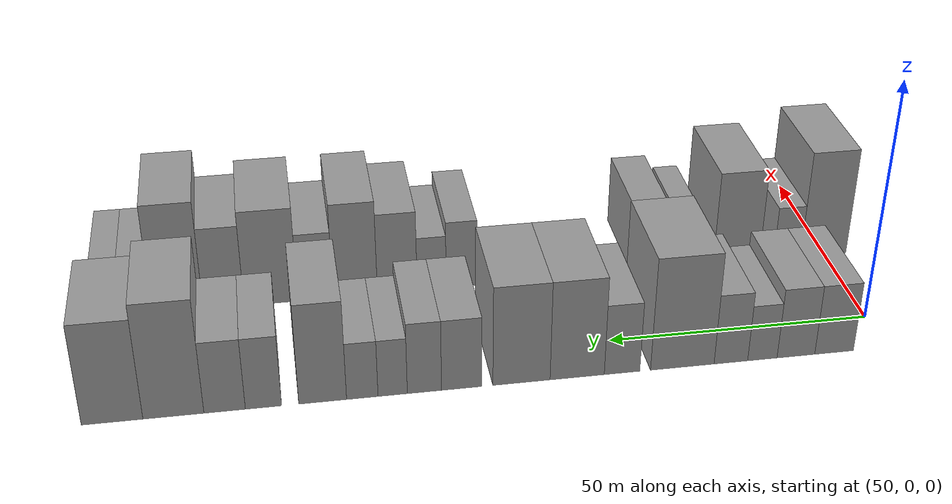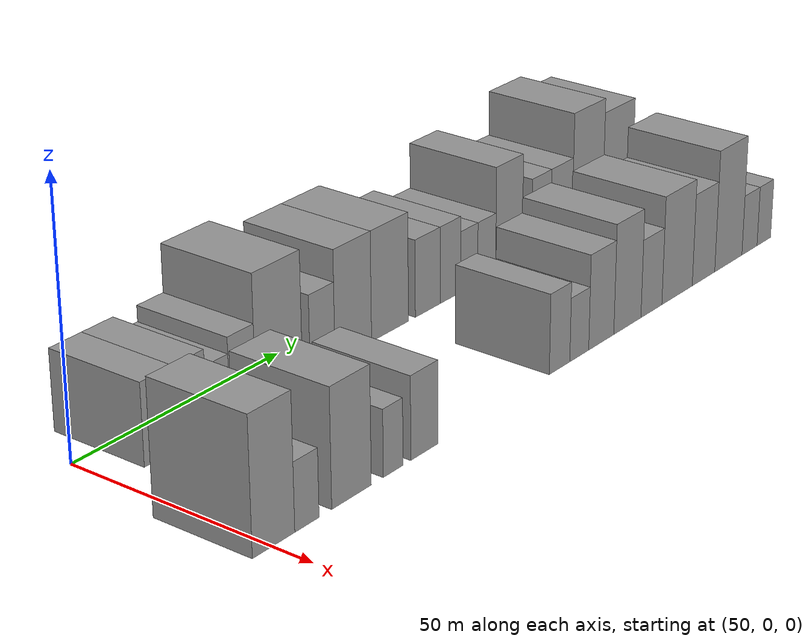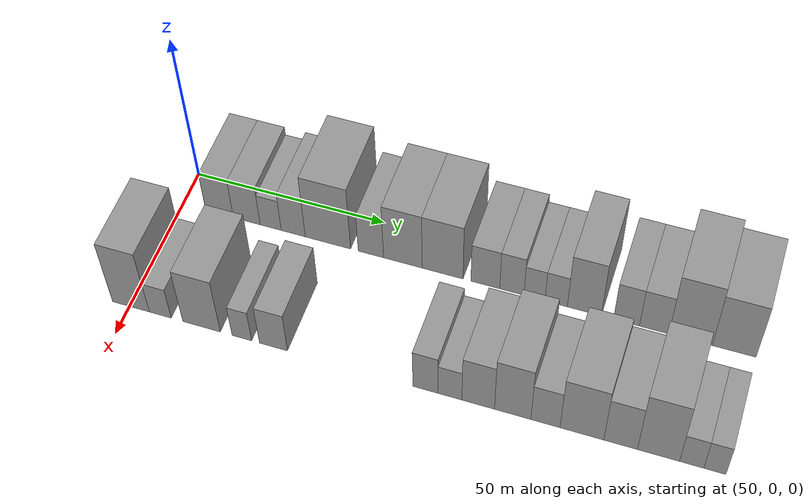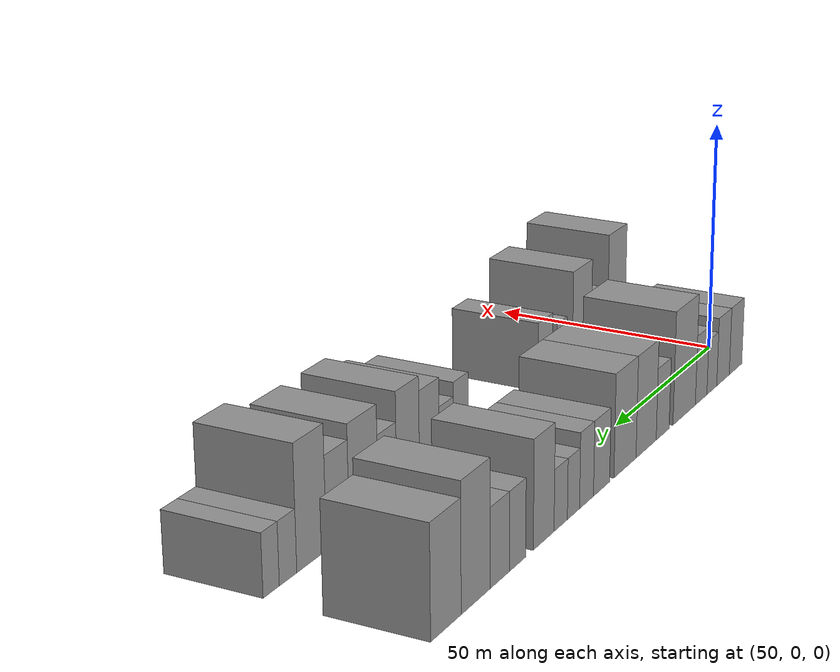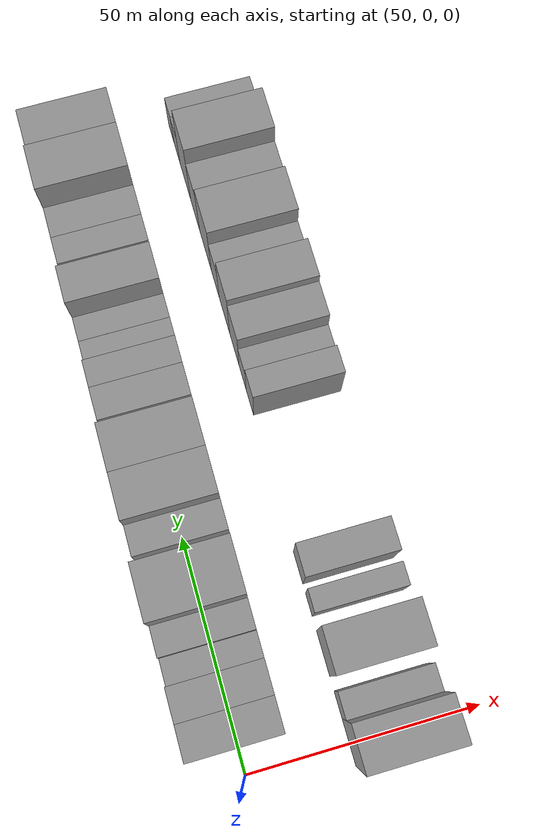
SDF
<sdf version="1.6">
 <world name="default">
  <model name="building_31">
   <static>1</static>
   <pose>50.0000 9.9251 0 0.000000 0.000000 0.000000</pose>
   <link name="link">
    <pose>0 0 7.50 0 0 0</pose>
    <collision name="collision"><geometry><box><size>20.0000 7.4453 15.0000</size></box></geometry></collision>
    <visual name="visual">
     <cast_shadows>0</cast_shadows>
     <geometry><box><size>20.0000 7.4453 15.0000</size></box></geometry>
     <material>
      <script>
       <uri>model://grey_wall/materials/scripts</uri>
       <uri>model://grey_wall/materials/textures</uri>
       <name>vrc/grey_wall</name>
      </script>
     </material>
    </visual>
   </link>
  </model>
  <model name="building_32">
   <static>1</static>
   <pose>50.0000 17.2544 0 0.000000 0.000000 0.000000</pose>
   <link name="link">
    <pose>0 0 7.50 0 0 0</pose>
    <collision name="collision"><geometry><box><size>20.0000 7.2133 15.0000</size></box></geometry></collision>
    <visual name="visual">
     <cast_shadows>0</cast_shadows>
     <geometry><box><size>20.0000 7.2133 15.0000</size></box></geometry>
     <material>
      <script>
       <uri>model://grey_wall/materials/scripts</uri>
       <uri>model://grey_wall/materials/textures</uri>
       <name>vrc/grey_wall</name>
      </script>
     </material>
    </visual>
   </link>
  </model>
  <model name="building_33">
   <static>1</static>
   <pose>50.0000 23.6577 0 0.000000 0.000000 0.000000</pose>
   <link name="link">
    <pose>0 0 6.00 0 0 0</pose>
    <collision name="collision"><geometry><box><size>20.0000 5.5933 12.0000</size></box></geometry></collision>
    <visual name="visual">
     <cast_shadows>0</cast_shadows>
     <geometry><box><size>20.0000 5.5933 12.0000</size></box></geometry>
     <material>
      <script>
       <uri>model://grey_wall/materials/scripts</uri>
       <uri>model://grey_wall/materials/textures</uri>
       <name>vrc/grey_wall</name>
      </script>
     </material>
    </visual>
   </link>
  </model>
  <model name="building_34">
   <static>1</static>
   <pose>50.0000 29.6314 0 0.000000 0.000000 0.000000</pose>
   <link name="link">
    <pose>0 0 7.50 0 0 0</pose>
    <collision name="collision"><geometry><box><size>20.0000 6.3542 15.0000</size></box></geometry></collision>
    <visual name="visual">
     <cast_shadows>0</cast_shadows>
     <geometry><box><size>20.0000 6.3542 15.0000</size></box></geometry>
     <material>
      <script>
       <uri>model://grey_wall/materials/scripts</uri>
       <uri>model://grey_wall/materials/textures</uri>
       <name>vrc/grey_wall</name>
      </script>
     </material>
    </visual>
   </link>
  </model>
  <model name="building_35">
   <static>1</static>
   <pose>50.0000 38.7685 0 0.000000 0.000000 0.000000</pose>
   <link name="link">
    <pose>0 0 12.00 0 0 0</pose>
    <collision name="collision"><geometry><box><size>20.0000 11.9199 24.0000</size></box></geometry></collision>
    <visual name="visual">
     <cast_shadows>0</cast_shadows>
     <geometry><box><size>20.0000 11.9199 24.0000</size></box></geometry>
     <material>
      <script>
       <uri>model://grey_wall/materials/scripts</uri>
       <uri>model://grey_wall/materials/textures</uri>
       <name>vrc/grey_wall</name>
      </script>
     </material>
    </visual>
   </link>
  </model>
  <model name="building_36">
   <static>1</static>
   <pose>50.0000 50.0212 0 0.000000 0.000000 0.000000</pose>
   <link name="link">
    <pose>0 0 7.50 0 0 0</pose>
    <collision name="collision"><geometry><box><size>20.0000 6.5854 15.0000</size></box></geometry></collision>
    <visual name="visual">
     <cast_shadows>0</cast_shadows>
     <geometry><box><size>20.0000 6.5854 15.0000</size></box></geometry>
     <material>
      <script>
       <uri>model://grey_wall/materials/scripts</uri>
       <uri>model://grey_wall/materials/textures</uri>
       <name>vrc/grey_wall</name>
      </script>
     </material>
    </visual>
   </link>
  </model>
  <model name="building_37">
   <static>1</static>
   <pose>50.0000 58.3000 0 0.000000 0.000000 0.000000</pose>
   <link name="link">
    <pose>0 0 10.50 0 0 0</pose>
    <collision name="collision"><geometry><box><size>20.0000 9.9722 21.0000</size></box></geometry></collision>
    <visual name="visual">
     <cast_shadows>0</cast_shadows>
     <geometry><box><size>20.0000 9.9722 21.0000</size></box></geometry>
     <material>
      <script>
       <uri>model://grey_wall/materials/scripts</uri>
       <uri>model://grey_wall/materials/textures</uri>
       <name>vrc/grey_wall</name>
      </script>
     </material>
    </visual>
   </link>
  </model>
  <model name="building_38">
   <static>1</static>
   <pose>50.0000 68.4971 0 0.000000 0.000000 0.000000</pose>
   <link name="link">
    <pose>0 0 10.50 0 0 0</pose>
    <collision name="collision"><geometry><box><size>20.0000 10.4220 21.0000</size></box></geometry></collision>
    <visual name="visual">
     <cast_shadows>0</cast_shadows>
     <geometry><box><size>20.0000 10.4220 21.0000</size></box></geometry>
     <material>
      <script>
       <uri>model://grey_wall/materials/scripts</uri>
       <uri>model://grey_wall/materials/textures</uri>
       <name>vrc/grey_wall</name>
      </script>
     </material>
    </visual>
   </link>
  </model>
  <model name="building_39">
   <static>1</static>
   <pose>50.0000 79.3387 0 0.000000 0.000000 0.000000</pose>
   <link name="link">
    <pose>0 0 7.50 0 0 0</pose>
    <collision name="collision"><geometry><box><size>20.0000 7.2612 15.0000</size></box></geometry></collision>
    <visual name="visual">
     <cast_shadows>0</cast_shadows>
     <geometry><box><size>20.0000 7.2612 15.0000</size></box></geometry>
     <material>
      <script>
       <uri>model://grey_wall/materials/scripts</uri>
       <uri>model://grey_wall/materials/textures</uri>
       <name>vrc/grey_wall</name>
      </script>
     </material>
    </visual>
   </link>
  </model>
  <model name="building_40">
   <static>1</static>
   <pose>50.0000 86.0301 0 0.000000 0.000000 0.000000</pose>
   <link name="link">
    <pose>0 0 7.50 0 0 0</pose>
    <collision name="collision"><geometry><box><size>20.0000 6.1216 15.0000</size></box></geometry></collision>
    <visual name="visual">
     <cast_shadows>0</cast_shadows>
     <geometry><box><size>20.0000 6.1216 15.0000</size></box></geometry>
     <material>
      <script>
       <uri>model://grey_wall/materials/scripts</uri>
       <uri>model://grey_wall/materials/textures</uri>
       <name>vrc/grey_wall</name>
      </script>
     </material>
    </visual>
   </link>
  </model>
  <model name="building_41">
   <static>1</static>
   <pose>50.0000 91.6999 0 0.000000 0.000000 0.000000</pose>
   <link name="link">
    <pose>0 0 6.00 0 0 0</pose>
    <collision name="collision"><geometry><box><size>20.0000 5.2180 12.0000</size></box></geometry></collision>
    <visual name="visual">
     <cast_shadows>0</cast_shadows>
     <geometry><box><size>20.0000 5.2180 12.0000</size></box></geometry>
     <material>
      <script>
       <uri>model://grey_wall/materials/scripts</uri>
       <uri>model://grey_wall/materials/textures</uri>
       <name>vrc/grey_wall</name>
      </script>
     </material>
    </visual>
   </link>
  </model>
  <model name="building_42">
   <static>1</static>
   <pose>50.0000 97.0927 0 0.000000 0.000000 0.000000</pose>
   <link name="link">
    <pose>0 0 6.00 0 0 0</pose>
    <collision name="collision"><geometry><box><size>20.0000 5.5674 12.0000</size></box></geometry></collision>
    <visual name="visual">
     <cast_shadows>0</cast_shadows>
     <geometry><box><size>20.0000 5.5674 12.0000</size></box></geometry>
     <material>
      <script>
       <uri>model://grey_wall/materials/scripts</uri>
       <uri>model://grey_wall/materials/textures</uri>
       <name>vrc/grey_wall</name>
      </script>
     </material>
    </visual>
   </link>
  </model>
  <model name="building_43">
   <static>1</static>
   <pose>50.0000 104.0828 0 0.000000 0.000000 0.000000</pose>
   <link name="link">
    <pose>0 0 10.50 0 0 0</pose>
    <collision name="collision"><geometry><box><size>20.0000 8.4127 21.0000</size></box></geometry></collision>
    <visual name="visual">
     <cast_shadows>0</cast_shadows>
     <geometry><box><size>20.0000 8.4127 21.0000</size></box></geometry>
     <material>
      <script>
       <uri>model://grey_wall/materials/scripts</uri>
       <uri>model://grey_wall/materials/textures</uri>
       <name>vrc/grey_wall</name>
      </script>
     </material>
    </visual>
   </link>
  </model>
  <model name="building_44">
   <static>1</static>
   <pose>50.0000 114.4415 0 0.000000 0.000000 0.000000</pose>
   <link name="link">
    <pose>0 0 7.50 0 0 0</pose>
    <collision name="collision"><geometry><box><size>20.0000 6.3048 15.0000</size></box></geometry></collision>
    <visual name="visual">
     <cast_shadows>0</cast_shadows>
     <geometry><box><size>20.0000 6.3048 15.0000</size></box></geometry>
     <material>
      <script>
       <uri>model://grey_wall/materials/scripts</uri>
       <uri>model://grey_wall/materials/textures</uri>
       <name>vrc/grey_wall</name>
      </script>
     </material>
    </visual>
   </link>
  </model>
  <model name="building_45">
   <static>1</static>
   <pose>50.0000 121.1762 0 0.000000 0.000000 0.000000</pose>
   <link name="link">
    <pose>0 0 7.50 0 0 0</pose>
    <collision name="collision"><geometry><box><size>20.0000 7.1645 15.0000</size></box></geometry></collision>
    <visual name="visual">
     <cast_shadows>0</cast_shadows>
     <geometry><box><size>20.0000 7.1645 15.0000</size></box></geometry>
     <material>
      <script>
       <uri>model://grey_wall/materials/scripts</uri>
       <uri>model://grey_wall/materials/textures</uri>
       <name>vrc/grey_wall</name>
      </script>
     </material>
    </visual>
   </link>
  </model>
  <model name="building_46">
   <static>1</static>
   <pose>50.0000 129.9872 0 0.000000 0.000000 0.000000</pose>
   <link name="link">
    <pose>0 0 12.00 0 0 0</pose>
    <collision name="collision"><geometry><box><size>20.0000 10.4575 24.0000</size></box></geometry></collision>
    <visual name="visual">
     <cast_shadows>0</cast_shadows>
     <geometry><box><size>20.0000 10.4575 24.0000</size></box></geometry>
     <material>
      <script>
       <uri>model://grey_wall/materials/scripts</uri>
       <uri>model://grey_wall/materials/textures</uri>
       <name>vrc/grey_wall</name>
      </script>
     </material>
    </visual>
   </link>
  </model>
  <model name="building_47">
   <static>1</static>
   <pose>50.0000 140.4449 0 0.000000 0.000000 0.000000</pose>
   <link name="link">
    <pose>0 0 10.50 0 0 0</pose>
    <collision name="collision"><geometry><box><size>20.0000 10.4578 21.0000</size></box></geometry></collision>
    <visual name="visual">
     <cast_shadows>0</cast_shadows>
     <geometry><box><size>20.0000 10.4578 21.0000</size></box></geometry>
     <material>
      <script>
       <uri>model://grey_wall/materials/scripts</uri>
       <uri>model://grey_wall/materials/textures</uri>
       <name>vrc/grey_wall</name>
      </script>
     </material>
    </visual>
   </link>
  </model>
  <model name="building_97">
   <static>1</static>
   <pose>82.0000 0.3367 0 0.000000 0.000000 0.000000</pose>
   <link name="link">
    <pose>0 0 12.00 0 0 0</pose>
    <collision name="collision"><geometry><box><size>20.0000 9.6275 24.0000</size></box></geometry></collision>
    <visual name="visual">
     <cast_shadows>0</cast_shadows>
     <geometry><box><size>20.0000 9.6275 24.0000</size></box></geometry>
     <material>
      <script>
       <uri>model://grey_wall/materials/scripts</uri>
       <uri>model://grey_wall/materials/textures</uri>
       <name>vrc/grey_wall</name>
      </script>
     </material>
    </visual>
   </link>
  </model>
  <model name="building_98">
   <static>1</static>
   <pose>82.0000 7.9887 0 0.000000 0.000000 0.000000</pose>
   <link name="link">
    <pose>0 0 6.00 0 0 0</pose>
    <collision name="collision"><geometry><box><size>20.0000 5.6764 12.0000</size></box></geometry></collision>
    <visual name="visual">
     <cast_shadows>0</cast_shadows>
     <geometry><box><size>20.0000 5.6764 12.0000</size></box></geometry>
     <material>
      <script>
       <uri>model://grey_wall/materials/scripts</uri>
       <uri>model://grey_wall/materials/textures</uri>
       <name>vrc/grey_wall</name>
      </script>
     </material>
    </visual>
   </link>
  </model>
  <model name="building_99">
   <static>1</static>
   <pose>82.0000 18.6422 0 0.000000 0.000000 0.000000</pose>
   <link name="link">
    <pose>0 0 10.50 0 0 0</pose>
    <collision name="collision"><geometry><box><size>20.0000 9.6308 21.0000</size></box></geometry></collision>
    <visual name="visual">
     <cast_shadows>0</cast_shadows>
     <geometry><box><size>20.0000 9.6308 21.0000</size></box></geometry>
     <material>
      <script>
       <uri>model://grey_wall/materials/scripts</uri>
       <uri>model://grey_wall/materials/textures</uri>
       <name>vrc/grey_wall</name>
      </script>
     </material>
    </visual>
   </link>
  </model>
  <model name="building_100">
   <static>1</static>
   <pose>82.0000 28.9468 0 0.000000 0.000000 0.000000</pose>
   <link name="link">
    <pose>0 0 6.00 0 0 0</pose>
    <collision name="collision"><geometry><box><size>20.0000 4.9784 12.0000</size></box></geometry></collision>
    <visual name="visual">
     <cast_shadows>0</cast_shadows>
     <geometry><box><size>20.0000 4.9784 12.0000</size></box></geometry>
     <material>
      <script>
       <uri>model://grey_wall/materials/scripts</uri>
       <uri>model://grey_wall/materials/textures</uri>
       <name>vrc/grey_wall</name>
      </script>
     </material>
    </visual>
   </link>
  </model>
  <model name="building_101">
   <static>1</static>
   <pose>82.0000 36.9591 0 0.000000 0.000000 0.000000</pose>
   <link name="link">
    <pose>0 0 7.50 0 0 0</pose>
    <collision name="collision"><geometry><box><size>20.0000 7.0462 15.0000</size></box></geometry></collision>
    <visual name="visual">
     <cast_shadows>0</cast_shadows>
     <geometry><box><size>20.0000 7.0462 15.0000</size></box></geometry>
     <material>
      <script>
       <uri>model://grey_wall/materials/scripts</uri>
       <uri>model://grey_wall/materials/textures</uri>
       <name>vrc/grey_wall</name>
      </script>
     </material>
    </visual>
   </link>
  </model>
  <model name="building_102">
   <static>1</static>
   <pose>82.0000 74.6300 0 0.000000 0.000000 0.000000</pose>
   <link name="link">
    <pose>0 0 7.50 0 0 0</pose>
    <collision name="collision"><geometry><box><size>20.0000 6.0985 15.0000</size></box></geometry></collision>
    <visual name="visual">
     <cast_shadows>0</cast_shadows>
     <geometry><box><size>20.0000 6.0985 15.0000</size></box></geometry>
     <material>
      <script>
       <uri>model://grey_wall/materials/scripts</uri>
       <uri>model://grey_wall/materials/textures</uri>
       <name>vrc/grey_wall</name>
      </script>
     </material>
    </visual>
   </link>
  </model>
  <model name="building_103">
   <static>1</static>
   <pose>82.0000 80.5514 0 0.000000 0.000000 0.000000</pose>
   <link name="link">
    <pose>0 0 6.00 0 0 0</pose>
    <collision name="collision"><geometry><box><size>20.0000 5.7442 12.0000</size></box></geometry></collision>
    <visual name="visual">
     <cast_shadows>0</cast_shadows>
     <geometry><box><size>20.0000 5.7442 12.0000</size></box></geometry>
     <material>
      <script>
       <uri>model://grey_wall/materials/scripts</uri>
       <uri>model://grey_wall/materials/textures</uri>
       <name>vrc/grey_wall</name>
      </script>
     </material>
    </visual>
   </link>
  </model>
  <model name="building_104">
   <static>1</static>
   <pose>82.0000 87.3263 0 0.000000 0.000000 0.000000</pose>
   <link name="link">
    <pose>0 0 9.00 0 0 0</pose>
    <collision name="collision"><geometry><box><size>20.0000 7.8056 18.0000</size></box></geometry></collision>
    <visual name="visual">
     <cast_shadows>0</cast_shadows>
     <geometry><box><size>20.0000 7.8056 18.0000</size></box></geometry>
     <material>
      <script>
       <uri>model://grey_wall/materials/scripts</uri>
       <uri>model://grey_wall/materials/textures</uri>
       <name>vrc/grey_wall</name>
      </script>
     </material>
    </visual>
   </link>
  </model>
  <model name="building_105">
   <static>1</static>
   <pose>82.0000 95.5664 0 0.000000 0.000000 0.000000</pose>
   <link name="link">
    <pose>0 0 10.50 0 0 0</pose>
    <collision name="collision"><geometry><box><size>20.0000 8.6746 21.0000</size></box></geometry></collision>
    <visual name="visual">
     <cast_shadows>0</cast_shadows>
     <geometry><box><size>20.0000 8.6746 21.0000</size></box></geometry>
     <material>
      <script>
       <uri>model://grey_wall/materials/scripts</uri>
       <uri>model://grey_wall/materials/textures</uri>
       <name>vrc/grey_wall</name>
      </script>
     </material>
    </visual>
   </link>
  </model>
  <model name="building_106">
   <static>1</static>
   <pose>82.0000 103.3387 0 0.000000 0.000000 0.000000</pose>
   <link name="link">
    <pose>0 0 7.50 0 0 0</pose>
    <collision name="collision"><geometry><box><size>20.0000 6.8700 15.0000</size></box></geometry></collision>
    <visual name="visual">
     <cast_shadows>0</cast_shadows>
     <geometry><box><size>20.0000 6.8700 15.0000</size></box></geometry>
     <material>
      <script>
       <uri>model://grey_wall/materials/scripts</uri>
       <uri>model://grey_wall/materials/textures</uri>
       <name>vrc/grey_wall</name>
      </script>
     </material>
    </visual>
   </link>
  </model>
  <model name="building_107">
   <static>1</static>
   <pose>82.0000 111.8982 0 0.000000 0.000000 0.000000</pose>
   <link name="link">
    <pose>0 0 10.50 0 0 0</pose>
    <collision name="collision"><geometry><box><size>20.0000 10.2490 21.0000</size></box></geometry></collision>
    <visual name="visual">
     <cast_shadows>0</cast_shadows>
     <geometry><box><size>20.0000 10.2490 21.0000</size></box></geometry>
     <material>
      <script>
       <uri>model://grey_wall/materials/scripts</uri>
       <uri>model://grey_wall/materials/textures</uri>
       <name>vrc/grey_wall</name>
      </script>
     </material>
    </visual>
   </link>
  </model>
  <model name="building_108">
   <static>1</static>
   <pose>82.0000 120.9257 0 0.000000 0.000000 0.000000</pose>
   <link name="link">
    <pose>0 0 9.00 0 0 0</pose>
    <collision name="collision"><geometry><box><size>20.0000 7.8059 18.0000</size></box></geometry></collision>
    <visual name="visual">
     <cast_shadows>0</cast_shadows>
     <geometry><box><size>20.0000 7.8059 18.0000</size></box></geometry>
     <material>
      <script>
       <uri>model://grey_wall/materials/scripts</uri>
       <uri>model://grey_wall/materials/textures</uri>
       <name>vrc/grey_wall</name>
      </script>
     </material>
    </visual>
   </link>
  </model>
  <model name="building_109">
   <static>1</static>
   <pose>82.0000 129.6776 0 0.000000 0.000000 0.000000</pose>
   <link name="link">
    <pose>0 0 12.00 0 0 0</pose>
    <collision name="collision"><geometry><box><size>20.0000 9.6979 24.0000</size></box></geometry></collision>
    <visual name="visual">
     <cast_shadows>0</cast_shadows>
     <geometry><box><size>20.0000 9.6979 24.0000</size></box></geometry>
     <material>
      <script>
       <uri>model://grey_wall/materials/scripts</uri>
       <uri>model://grey_wall/materials/textures</uri>
       <name>vrc/grey_wall</name>
      </script>
     </material>
    </visual>
   </link>
  </model>
  <model name="building_110">
   <static>1</static>
   <pose>82.0000 137.2924 0 0.000000 0.000000 0.000000</pose>
   <link name="link">
    <pose>0 0 6.00 0 0 0</pose>
    <collision name="collision"><geometry><box><size>20.0000 5.5319 12.0000</size></box></geometry></collision>
    <visual name="visual">
     <cast_shadows>0</cast_shadows>
     <geometry><box><size>20.0000 5.5319 12.0000</size></box></geometry>
     <material>
      <script>
       <uri>model://grey_wall/materials/scripts</uri>
       <uri>model://grey_wall/materials/textures</uri>
       <name>vrc/grey_wall</name>
      </script>
     </material>
    </visual>
   </link>
  </model>
  <model name="building_111">
   <static>1</static>
   <pose>82.0000 142.5686 0 0.000000 0.000000 0.000000</pose>
   <link name="link">
    <pose>0 0 6.00 0 0 0</pose>
    <collision name="collision"><geometry><box><size>20.0000 5.0205 12.0000</size></box></geometry></collision>
    <visual name="visual">
     <cast_shadows>0</cast_shadows>
     <geometry><box><size>20.0000 5.0205 12.0000</size></box></geometry>
     <material>
      <script>
       <uri>model://grey_wall/materials/scripts</uri>
       <uri>model://grey_wall/materials/textures</uri>
       <name>vrc/grey_wall</name>
      </script>
     </material>
    </visual>
   </link>
  </model>
 </world>
</sdf>
